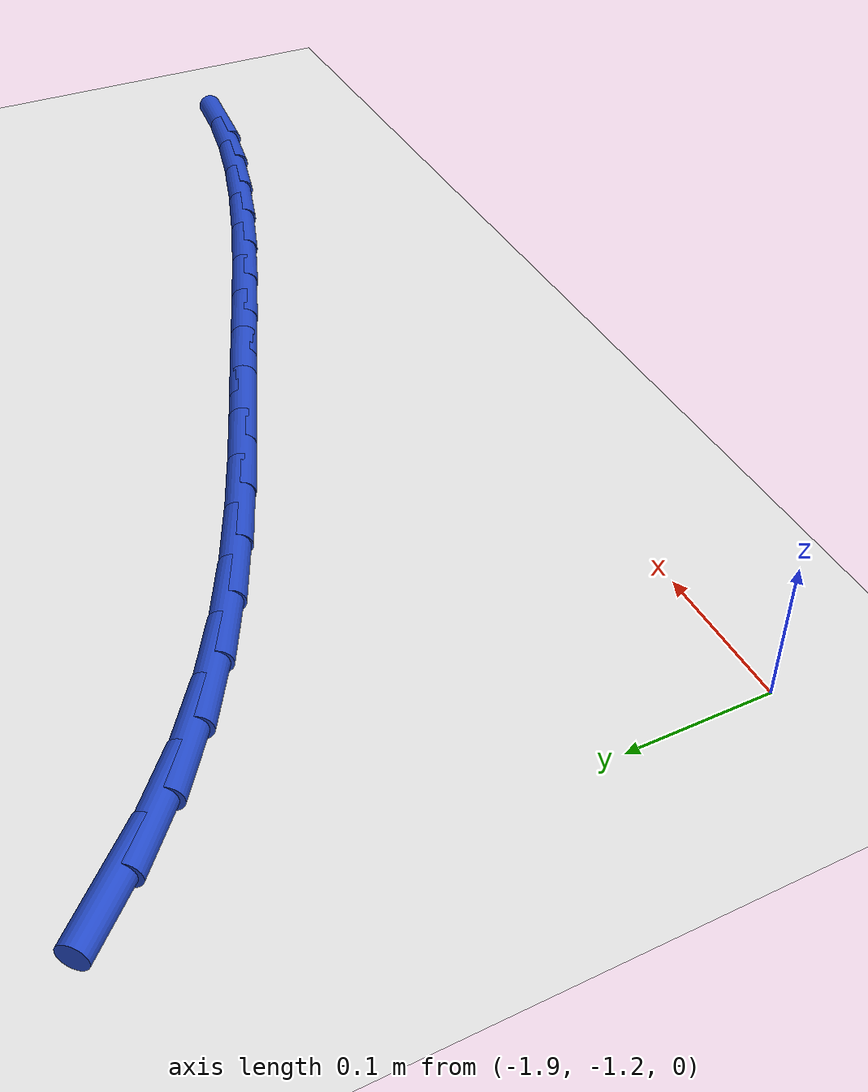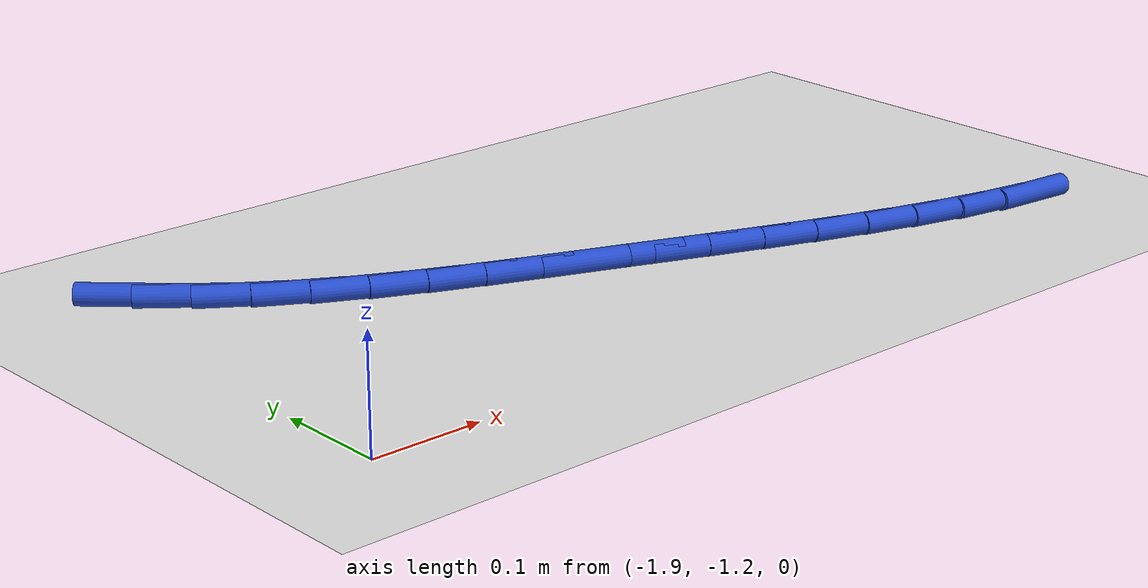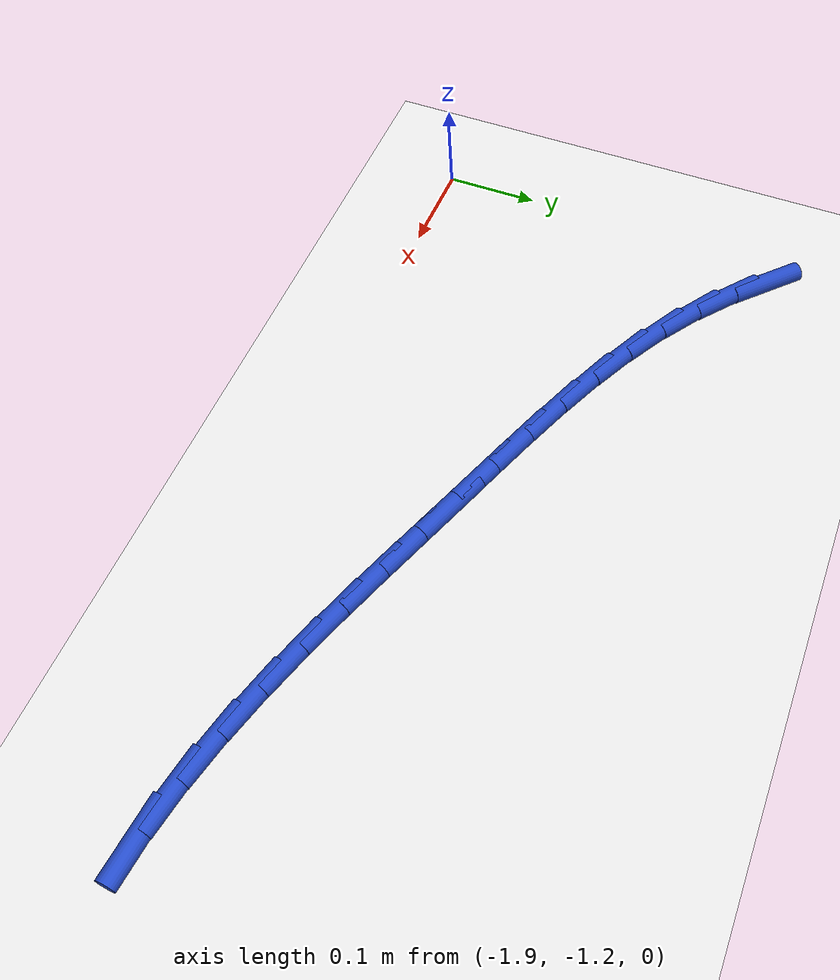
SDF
<sdf version="1.6">
 <world name="default">
  <model name="ground_plane">
   <static>1</static>
   <link name="link">
    <collision name="collision">
     <geometry><plane><normal>0 0 1</normal><size>100 100</size></plane></geometry>
     <surface><friction><ode><mu>100</mu><mu2>50</mu2></ode></friction></surface>
    </collision>
    <visual name="visual">
     <cast_shadows>0</cast_shadows>
     <geometry><plane><normal>0 0 1</normal><size>100 100</size></plane></geometry>
     <material>
      <script><uri>file://media/materials/scripts/gazebo.material</uri><name>Gazebo/WhiteGlow</name></script>
     </material>
    </visual>
   </link>
  </model>
  <model name="line">
   <link name="link_88">
    <pose>-1.864776357457436 -0.8183562843971824 0.01 0 1.57 -0.7756368478321437</pose>
    <collision name="collision">
     <geometry><cylinder><radius>0.01</radius><length>0.08</length></cylinder></geometry>
    </collision>
    <visual name="visual">
     <material>
      <script><name>Gazebo/Blue</name><uri>file://media/materials/scripts/gazebo.material</uri></script>
     </material>
     <geometry><cylinder><radius>0.01</radius><length>0.08</length></cylinder></geometry>
    </visual>
   </link>
   <link name="link_89">
    <pose>-1.8300545163608346 -0.8524067955391063 0.01 0 1.57 -0.6899453912602648</pose>
    <collision name="collision">
     <geometry><cylinder><radius>0.01</radius><length>0.08</length></cylinder></geometry>
    </collision>
    <visual name="visual">
     <material>
      <script><name>Gazebo/Blue</name><uri>file://media/materials/scripts/gazebo.material</uri></script>
     </material>
     <geometry><cylinder><radius>0.01</radius><length>0.08</length></cylinder></geometry>
    </visual>
   </link>
   <link name="link_90">
    <pose>-1.792864707933202 -0.8830974730477348 0.01 0 1.57 -0.6019373760551543</pose>
    <collision name="collision">
     <geometry><cylinder><radius>0.01</radius><length>0.08</length></cylinder></geometry>
    </collision>
    <visual name="visual">
     <material>
      <script><name>Gazebo/Blue</name><uri>file://media/materials/scripts/gazebo.material</uri></script>
     </material>
     <geometry><cylinder><radius>0.01</radius><length>0.08</length></cylinder></geometry>
    </visual>
   </link>
   <link name="link_91">
    <pose>-1.7532233970017455 -0.9103304486649548 0.01 0 1.57 -0.5264662423646781</pose>
    <collision name="collision">
     <geometry><cylinder><radius>0.01</radius><length>0.08</length></cylinder></geometry>
    </collision>
    <visual name="visual">
     <material>
      <script><name>Gazebo/Blue</name><uri>file://media/materials/scripts/gazebo.material</uri></script>
     </material>
     <geometry><cylinder><radius>0.01</radius><length>0.08</length></cylinder></geometry>
    </visual>
   </link>
   <link name="link_92">
    <pose>-1.7114267330929145 -0.9346218299836897 0.01 0 1.57 -0.46566839820039385</pose>
    <collision name="collision">
     <geometry><cylinder><radius>0.01</radius><length>0.08</length></cylinder></geometry>
    </collision>
    <visual name="visual">
     <material>
      <script><name>Gazebo/Blue</name><uri>file://media/materials/scripts/gazebo.material</uri></script>
     </material>
     <geometry><cylinder><radius>0.01</radius><length>0.08</length></cylinder></geometry>
    </visual>
   </link>
   <link name="link_93">
    <pose>-1.667797711922012 -0.9565466585024128 0.01 0 1.57 -0.4195520862918084</pose>
    <collision name="collision">
     <geometry><cylinder><radius>0.01</radius><length>0.08</length></cylinder></geometry>
    </collision>
    <visual name="visual">
     <material>
      <script><name>Gazebo/Blue</name><uri>file://media/materials/scripts/gazebo.material</uri></script>
     </material>
     <geometry><cylinder><radius>0.01</radius><length>0.08</length></cylinder></geometry>
    </visual>
   </link>
   <link name="link_94">
    <pose>-1.6226593292043405 -0.976679975719597 0.01 0 1.57 -0.3876863857352821</pose>
    <collision name="collision">
     <geometry><cylinder><radius>0.01</radius><length>0.08</length></cylinder></geometry>
    </collision>
    <visual name="visual">
     <material>
      <script><name>Gazebo/Blue</name><uri>file://media/materials/scripts/gazebo.material</uri></script>
     </material>
     <geometry><cylinder><radius>0.01</radius><length>0.08</length></cylinder></geometry>
    </visual>
   </link>
   <link name="link_95">
    <pose>-1.576334580655202 -0.9955968231337151 0.01 0 1.57 -0.3695004505435036</pose>
    <collision name="collision">
     <geometry><cylinder><radius>0.01</radius><length>0.08</length></cylinder></geometry>
    </collision>
    <visual name="visual">
     <material>
      <script><name>Gazebo/Blue</name><uri>file://media/materials/scripts/gazebo.material</uri></script>
     </material>
     <geometry><cylinder><radius>0.01</radius><length>0.08</length></cylinder></geometry>
    </visual>
   </link>
   <link name="link_96">
    <pose>-1.5291464619899005 -1.0138722422432398 0.01 0 1.57 -0.36446781154939983</pose>
    <collision name="collision">
     <geometry><cylinder><radius>0.01</radius><length>0.08</length></cylinder></geometry>
    </collision>
    <visual name="visual">
     <material>
      <script><name>Gazebo/Blue</name><uri>file://media/materials/scripts/gazebo.material</uri></script>
     </material>
     <geometry><cylinder><radius>0.01</radius><length>0.08</length></cylinder></geometry>
    </visual>
   </link>
   <link name="link_97">
    <pose>-1.481417963345396 -1.0320812508329937 0.01 0 1.57 -0.3681218276221707</pose>
    <collision name="collision">
     <geometry><cylinder><radius>0.01</radius><length>0.08</length></cylinder></geometry>
    </collision>
    <visual name="visual">
     <material>
      <script><name>Gazebo/Blue</name><uri>file://media/materials/scripts/gazebo.material</uri></script>
     </material>
     <geometry><cylinder><radius>0.01</radius><length>0.08</length></cylinder></geometry>
    </visual>
   </link>
   <link name="link_98">
    <pose>-1.433423615148575 -1.0505928634590882 0.01 0 1.57 -0.3663790103285619</pose>
    <collision name="collision">
     <geometry><cylinder><radius>0.01</radius><length>0.08</length></cylinder></geometry>
    </collision>
    <visual name="visual">
     <material>
      <script><name>Gazebo/Blue</name><uri>file://media/materials/scripts/gazebo.material</uri></script>
     </material>
     <geometry><cylinder><radius>0.01</radius><length>0.08</length></cylinder></geometry>
    </visual>
   </link>
   <link name="link_99">
    <pose>-1.3852716004592005 -1.0690689485832288 0.01 0 1.57 -0.3562578978698484</pose>
    <collision name="collision">
     <geometry><cylinder><radius>0.01</radius><length>0.08</length></cylinder></geometry>
    </collision>
    <visual name="visual">
     <material>
      <script><name>Gazebo/Blue</name><uri>file://media/materials/scripts/gazebo.material</uri></script>
     </material>
     <geometry><cylinder><radius>0.01</radius><length>0.08</length></cylinder></geometry>
    </visual>
   </link>
   <link name="link_100">
    <pose>-1.33703443702805 -1.0870197607017713 0.01 0 1.57 -0.33756754620951596</pose>
    <collision name="collision">
     <geometry><cylinder><radius>0.01</radius><length>0.08</length></cylinder></geometry>
    </collision>
    <visual name="visual">
     <material>
      <script><name>Gazebo/Blue</name><uri>file://media/materials/scripts/gazebo.material</uri></script>
     </material>
     <geometry><cylinder><radius>0.01</radius><length>0.08</length></cylinder></geometry>
    </visual>
   </link>
   <link name="link_101">
    <pose>-1.2887846426059042 -1.1039555543110726 0.01 0 1.57 -0.3098960475349012</pose>
    <collision name="collision">
     <geometry><cylinder><radius>0.01</radius><length>0.08</length></cylinder></geometry>
    </collision>
    <visual name="visual">
     <material>
      <script><name>Gazebo/Blue</name><uri>file://media/materials/scripts/gazebo.material</uri></script>
     </material>
     <geometry><cylinder><radius>0.01</radius><length>0.08</length></cylinder></geometry>
    </visual>
   </link>
   <link name="link_102">
    <pose>-1.2405947349435407 -1.119386583907489 0.01 0 1.57 -0.27263083924705733</pose>
    <collision name="collision">
     <geometry><cylinder><radius>0.01</radius><length>0.08</length></cylinder></geometry>
    </collision>
    <visual name="visual">
     <material>
      <script><name>Gazebo/Blue</name><uri>file://media/materials/scripts/gazebo.material</uri></script>
     </material>
     <geometry><cylinder><radius>0.01</radius><length>0.08</length></cylinder></geometry>
    </visual>
   </link>
   <link name="link_103">
    <pose>-1.1925372317917378 -1.1328231039873775 0.01 0 1.57 -0.22499975958783147</pose>
    <collision name="collision">
     <geometry><cylinder><radius>0.01</radius><length>0.08</length></cylinder></geometry>
    </collision>
    <visual name="visual">
     <material>
      <script><name>Gazebo/Blue</name><uri>file://media/materials/scripts/gazebo.material</uri></script>
     </material>
     <geometry><cylinder><radius>0.01</radius><length>0.08</length></cylinder></geometry>
    </visual>
   </link>
   <link name="link_104">
    <pose>-1.1446846509012734 -1.1437753690470944 0.01 0 1.57 -0.16615214376609738</pose>
    <collision name="collision">
     <geometry><cylinder><radius>0.01</radius><length>0.08</length></cylinder></geometry>
    </collision>
    <visual name="visual">
     <material>
      <script><name>Gazebo/Blue</name><uri>file://media/materials/scripts/gazebo.material</uri></script>
     </material>
     <geometry><cylinder><radius>0.01</radius><length>0.08</length></cylinder></geometry>
    </visual>
   </link>
   <link name="link_105">
    <pose>-1.0971095100229273 -1.1517536335829959 0.01 0 1.57 -0.09530596029148143</pose>
    <collision name="collision">
     <geometry><cylinder><radius>0.01</radius><length>0.08</length></cylinder></geometry>
    </collision>
    <visual name="visual">
     <material>
      <script><name>Gazebo/Blue</name><uri>file://media/materials/scripts/gazebo.material</uri></script>
     </material>
     <geometry><cylinder><radius>0.01</radius><length>0.08</length></cylinder></geometry>
    </visual>
   </link>
  </model>
 </world>
</sdf>
